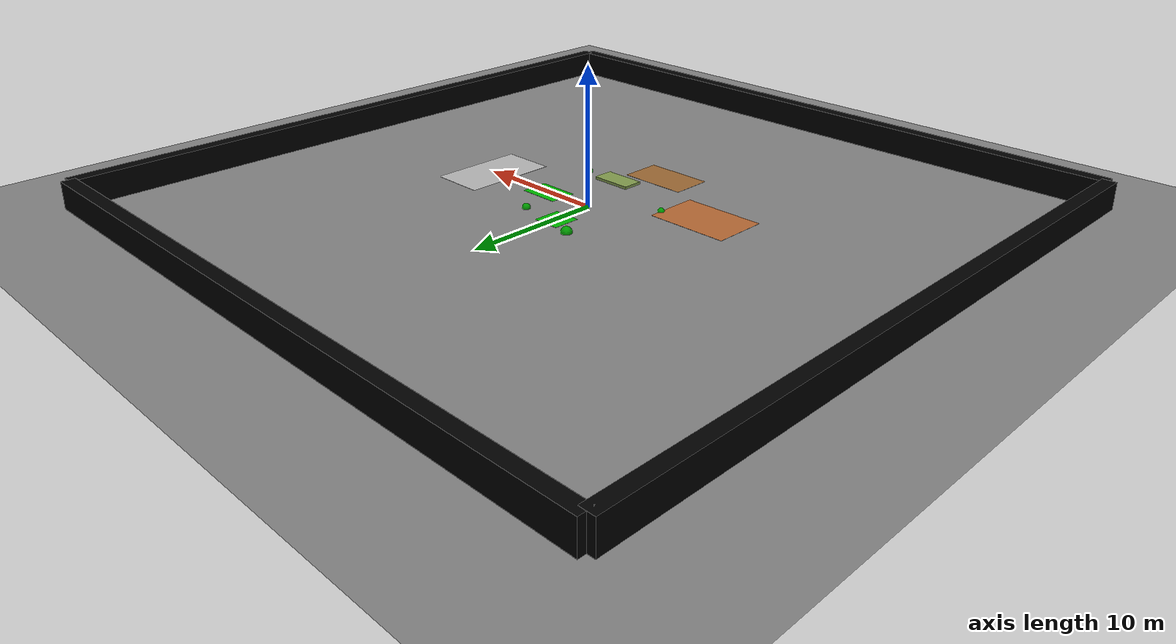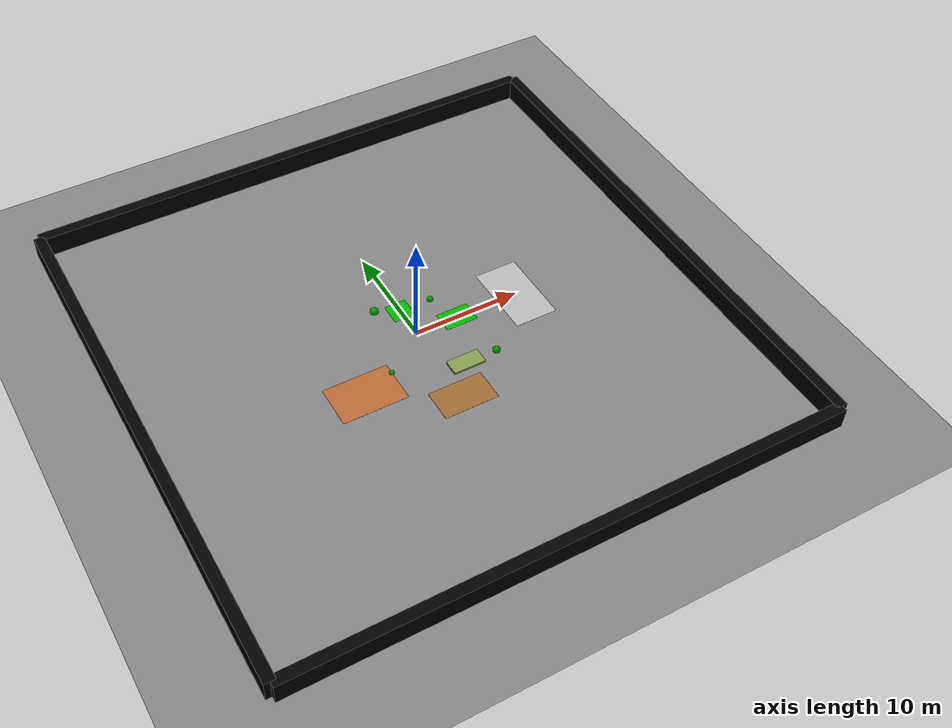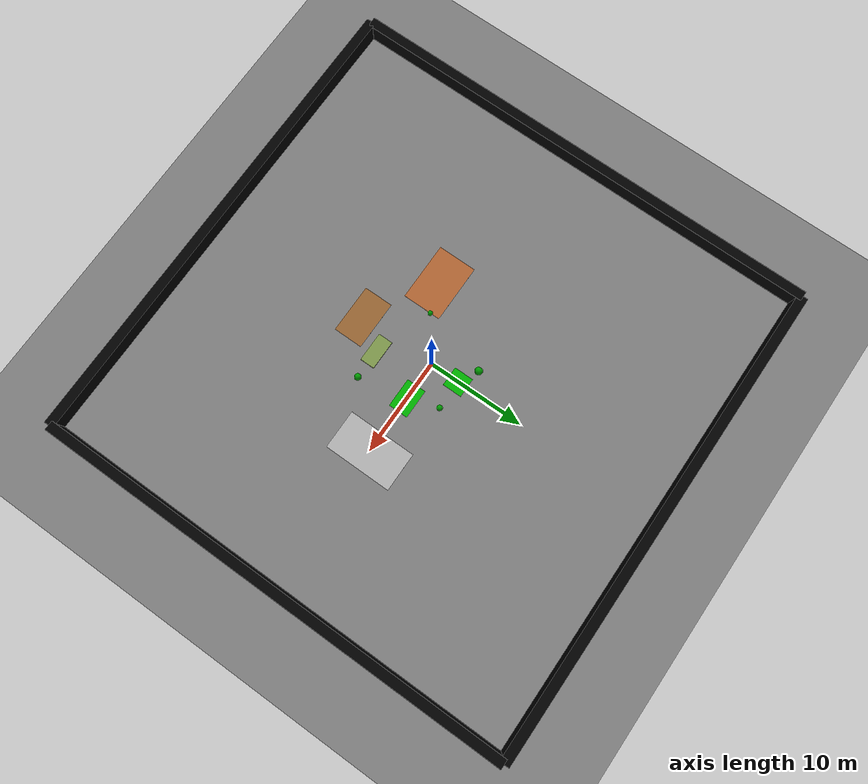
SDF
<sdf version="1.6">
 <world name="grass_world_with_obstacles">
  <physics type="ode">
   <max_step_size>0.001</max_step_size>
   <real_time_factor>1</real_time_factor>
   <real_time_update_rate>1000</real_time_update_rate>
   <gravity>0 0 -9.8</gravity>
  </physics>
  <scene><ambient>0.4 0.4 0.4 1</ambient><background>0.7 0.7 0.7 1</background><shadows>true</shadows></scene>
  <light type="directional" name="sun">
   <pose>0 0 10 0 0 0</pose>
   <diffuse>0.8 0.8 0.8 1</diffuse>
   <specular>0.2 0.2 0.2 1</specular>
   <direction>-0.5 0.1 -0.9</direction>
  </light>
  <model name="ground">
   <static>true</static>
   <link name="ground_link">
    <collision name="ground_collision">
     <geometry><plane><normal>0 0 1</normal><size>100 100</size></plane></geometry>
     <surface><friction><ode><mu>1</mu><mu2>1</mu2></ode></friction></surface>
    </collision>
    <visual name="ground_visual">
     <geometry><plane><normal>0 0 1</normal><size>100 100</size></plane></geometry>
     <material>
      <ambient>0.3 0.3 0.3 1</ambient>
      <diffuse>0.5 0.5 0.5 1</diffuse>
      <specular>0.01 0.01 0.01 1</specular>
     </material>
    </visual>
   </link>
  </model>
  <model name="difficult_terrain">
   <static>true</static>
   <pose>-7 -4 0.0 0 0 0</pose>
   <link name="link">
    <collision name="collision">
     <geometry><box><size>6 4 0.01</size></box></geometry>
     <surface>
      <friction><ode><mu>2.0</mu><mu2>2.0</mu2></ode></friction>
      <contact><ode><kp>1000.0</kp><kd>100.0</kd></ode></contact>
     </surface>
    </collision>
    <visual name="visual">
     <geometry><box><size>6 4 0.01</size></box></geometry>
     <material>
      <ambient>0.4 0.2 0.1 1</ambient>
      <diffuse>0.7 0.4 0.2 1</diffuse>
      <specular>0.1 0.1 0.1 1</specular>
     </material>
    </visual>
   </link>
  </model>
  <model name="terrain_bump_1">
   <static>true</static>
   <pose>2 -5 0.1 0 0 0</pose>
   <link name="link">
    <collision name="collision">
     <geometry><box><size>3 1.5 0.2</size></box></geometry>
     <surface><friction><ode><mu>1.0</mu><mu2>1.0</mu2></ode></friction></surface>
    </collision>
    <visual name="visual">
     <geometry><box><size>3 1.5 0.2</size></box></geometry>
     <material><ambient>0.3 0.4 0.2 1</ambient><diffuse>0.5 0.6 0.3 1</diffuse></material>
    </visual>
   </link>
  </model>
  <model name="mud_region">
   <static>true</static>
   <pose>0 -8 0.0 0 0 0</pose>
   <link name="link">
    <collision name="collision">
     <geometry><box><size>5 3 0.01</size></box></geometry>
     <surface><friction><ode><mu>0.2</mu><mu2>0.2</mu2></ode></friction></surface>
    </collision>
    <visual name="visual">
     <geometry><box><size>5 3 0.01</size></box></geometry>
     <material>
      <ambient>0.3 0.2 0.0 1</ambient>
      <diffuse>0.6 0.4 0.2 1</diffuse>
      <specular>0.1 0.1 0.1 1</specular>
     </material>
    </visual>
   </link>
  </model>
  <model name="rocky_region">
   <static>true</static>
   <pose>10 0 0.0 0 0 0</pose>
   <link name="link">
    <collision name="collision">
     <geometry><box><size>4 7 0.01</size></box></geometry>
     <surface>
      <friction><ode><mu>1.5</mu><mu2>1.5</mu2></ode></friction>
      <contact><ode><soft_cfm>0.01</soft_cfm><soft_erp>0.2</soft_erp><kp>500.0</kp><kd>10.0</kd></ode></contact>
     </surface>
    </collision>
    <visual name="visual">
     <geometry><box><size>4 7 0.01</size></box></geometry>
     <material>
      <ambient>0.5 0.5 0.5 1</ambient>
      <diffuse>0.7 0.7 0.7 1</diffuse>
      <specular>0.2 0.2 0.2 1</specular>
     </material>
    </visual>
   </link>
  </model>
  <model name="bush_1">
   <static>true</static>
   <pose>3 3 0 0 0 0</pose>
   <link name="link">
    <collision name="collision">
     <geometry><cylinder><radius>0.3</radius><length>0.5</length></cylinder></geometry>
     <surface><friction><ode><mu>0.6</mu><mu2>0.6</mu2></ode></friction></surface>
    </collision>
    <visual name="visual">
     <geometry><sphere><radius>0.3</radius></sphere></geometry>
     <material>
      <ambient>0.0 0.3 0.0 1</ambient>
      <diffuse>0.0 0.6 0.0 1</diffuse>
      <specular>0.0 0.1 0.0 1</specular>
     </material>
    </visual>
   </link>
  </model>
  <model name="bush_2">
   <static>true</static>
   <pose>-2 4 0 0 0 0</pose>
   <link name="link">
    <collision name="collision">
     <geometry><cylinder><radius>0.4</radius><length>0.6</length></cylinder></geometry>
     <surface><friction><ode><mu>0.6</mu><mu2>0.6</mu2></ode></friction></surface>
    </collision>
    <visual name="visual">
     <geometry><sphere><radius>0.4</radius></sphere></geometry>
     <material>
      <ambient>0.0 0.3 0.0 1</ambient>
      <diffuse>0.0 0.6 0.0 1</diffuse>
      <specular>0.0 0.1 0.0 1</specular>
     </material>
    </visual>
   </link>
  </model>
  <model name="bush_3">
   <static>true</static>
   <pose>5 -5 0 0 0 0</pose>
   <link name="link">
    <collision name="collision">
     <geometry><cylinder><radius>0.35</radius><length>0.5</length></cylinder></geometry>
     <surface><friction><ode><mu>0.6</mu><mu2>0.6</mu2></ode></friction></surface>
    </collision>
    <visual name="visual">
     <geometry><sphere><radius>0.35</radius></sphere></geometry>
     <material>
      <ambient>0.0 0.3 0.0 1</ambient>
      <diffuse>0.0 0.6 0.0 1</diffuse>
      <specular>0.0 0.1 0.0 1</specular>
     </material>
    </visual>
   </link>
  </model>
  <model name="bush_4">
   <static>true</static>
   <pose>-4 -3 0 0 0 0</pose>
   <link name="link">
    <collision name="collision">
     <geometry><cylinder><radius>0.25</radius><length>0.4</length></cylinder></geometry>
     <surface><friction><ode><mu>0.6</mu><mu2>0.6</mu2></ode></friction></surface>
    </collision>
    <visual name="visual">
     <geometry><sphere><radius>0.25</radius></sphere></geometry>
     <material>
      <ambient>0.0 0.3 0.0 1</ambient>
      <diffuse>0.0 0.6 0.0 1</diffuse>
      <specular>0.0 0.1 0.0 1</specular>
     </material>
    </visual>
   </link>
  </model>
  <model name="grass_area_1">
   <static>true</static>
   <pose>0 3 0 0 0 0</pose>
   <link name="link">
    <collision name="collision">
     <geometry><box><size>2 2 0.01</size></box></geometry>
     <surface><friction><ode><mu>0.5</mu><mu2>0.5</mu2></ode></friction></surface>
    </collision>
    <visual name="visual">
     <geometry><box><size>2 2 0.01</size></box></geometry>
     <material>
      <ambient>0.0 0.4 0.0 1</ambient>
      <diffuse>0.0 0.7 0.0 1</diffuse>
      <specular>0.0 0.1 0.0 1</specular>
     </material>
    </visual>
   </link>
  </model>
  <model name="grass_area_2">
   <static>true</static>
   <pose>4 0 0 0 0 0</pose>
   <link name="link">
    <collision name="collision">
     <geometry><box><size>3 2 0.01</size></box></geometry>
     <surface><friction><ode><mu>0.5</mu><mu2>0.5</mu2></ode></friction></surface>
    </collision>
    <visual name="visual">
     <geometry><box><size>3 2 0.01</size></box></geometry>
     <material>
      <ambient>0.0 0.4 0.0 1</ambient>
      <diffuse>0.0 0.7 0.0 1</diffuse>
      <specular>0.0 0.1 0.0 1</specular>
     </material>
    </visual>
   </link>
  </model>
  <model name="boundary">
   <static>true</static>
   <link name="link">
    <collision name="collision_1">
     <pose>25 0 1 0 0 0</pose>
     <geometry><box><size>1 50 2</size></box></geometry>
     <surface><friction><ode><mu>1.0</mu><mu2>1.0</mu2></ode></friction></surface>
    </collision>
    <collision name="collision_2">
     <pose>-25 0 1 0 0 0</pose>
     <geometry><box><size>1 50 2</size></box></geometry>
    </collision>
    <collision name="collision_3">
     <pose>0 25 1 0 0 0</pose>
     <geometry><box><size>50 1 2</size></box></geometry>
    </collision>
    <collision name="collision_4">
     <pose>0 -25 1 0 0 0</pose>
     <geometry><box><size>50 1 2</size></box></geometry>
    </collision>
    <visual name="visual_1">
     <pose>25 0 1 0 0 0</pose>
     <geometry><box><size>1 50 2</size></box></geometry>
     <material><ambient>0 0 0 1</ambient><diffuse>0 0 0 1</diffuse><specular>0 0 0 1</specular></material>
    </visual>
    <visual name="visual_2">
     <pose>-25 0 1 0 0 0</pose>
     <geometry><box><size>1 50 2</size></box></geometry>
     <material><ambient>0 0 0 1</ambient><diffuse>0 0 0 1</diffuse><specular>0 0 0 1</specular></material>
    </visual>
    <visual name="visual_3">
     <pose>0 25 1 0 0 0</pose>
     <geometry><box><size>50 1 2</size></box></geometry>
     <material><ambient>0 0 0 1</ambient><diffuse>0 0 0 1</diffuse><specular>0 0 0 1</specular></material>
    </visual>
    <visual name="visual_4">
     <pose>0 -25 1 0 0 0</pose>
     <geometry><box><size>50 1 2</size></box></geometry>
     <material><ambient>0 0 0 1</ambient><diffuse>0 0 0 1</diffuse><specular>0 0 0 1</specular></material>
    </visual>
   </link>
  </model>
 </world>
</sdf>
